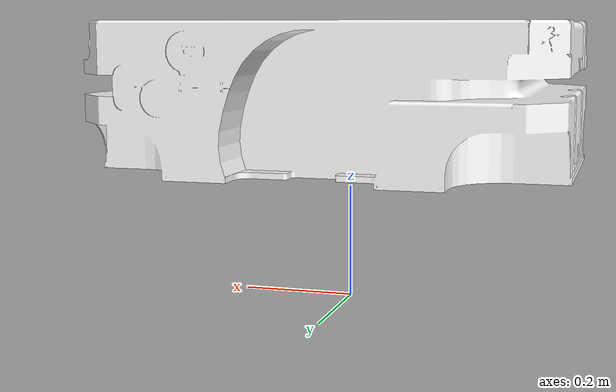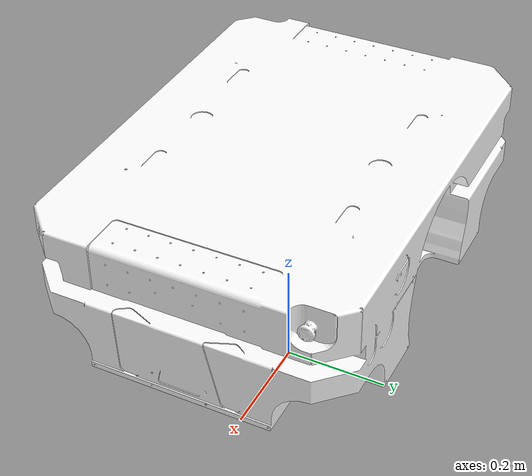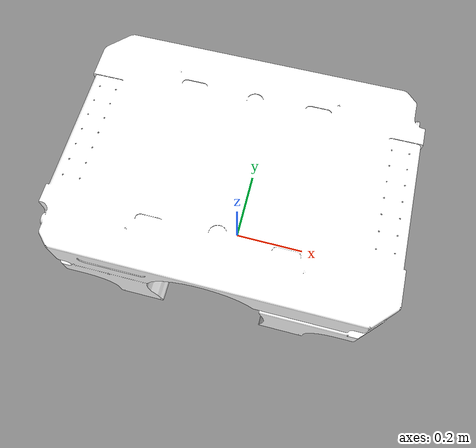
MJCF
<mujoco model="tmr">
  <compiler angle="radian"/>

  <asset>
    <mesh name="tmr_base" file="meshes/murp/tmr_base.stl"/>
    <mesh name="torso_cover" file="meshes/murp/torso.stl"/>
    <mesh name="caster" file="meshes/murp/caster.stl"/>
    <mesh name="wheel_simplified" file="meshes/murp/wheel.stl"/>
  </asset>
  <actuator>
    <velocity ctrllimited="true" ctrlrange="-1.00 1.00" joint="joint_mobile_forward" kv="1000" name="actuator_mobile_forward" forcelimited="true" forcerange="-600 1600"/>
		<velocity ctrllimited="true" ctrlrange="-1.00 1.00" joint="joint_mobile_side" kv="1000" name="actuator_mobile_side" forcelimited="true" forcerange="-600 1600"/>
		<velocity ctrllimited="true" ctrlrange="-1.50 1.50" joint="joint_mobile_yaw" kv="1500" name="actuator_mobile_yaw" forcelimited="true" forcerange="-600 1600"/>

	</actuator>

  <worldbody>
    <body name="base" pos="0 0 0">
        <inertial pos="0 0 0" mass="75.0" diaginertia="0.1 0.1 0.1"/>
        <geom pos="0 0 0.2" quat="0 0 0 1" type="mesh" rgba="1 1 1 1" mesh="tmr_base" group="1"/>

        <body name="fixed_support" pos="0.00 0 0.00">
          <body name="support" pos="0.0 0.0 0">
            <site name="center" type="sphere" pos="0 0 0" size="0.01" group="1" rgba="0 0 0 0"/>
          </body>
        </body>

        <joint name="joint_mobile_forward" pos="-0.21 0 0" axis="0 1 0" type="slide" limited="false" damping="0" armature="0.0" frictionloss="250"/>
        <joint name="joint_mobile_side" pos="-0.21 0 0" axis="1 0 0" type="slide" limited="false" damping="0" armature="0.0" frictionloss="250"/>
        <joint name="joint_mobile_yaw" pos="-0.21 0 0" axis="0 0 1" type="hinge" limited="false" damping="0" armature="0.0" frictionloss="250"/>
    </body>
  </worldbody>
</mujoco>
